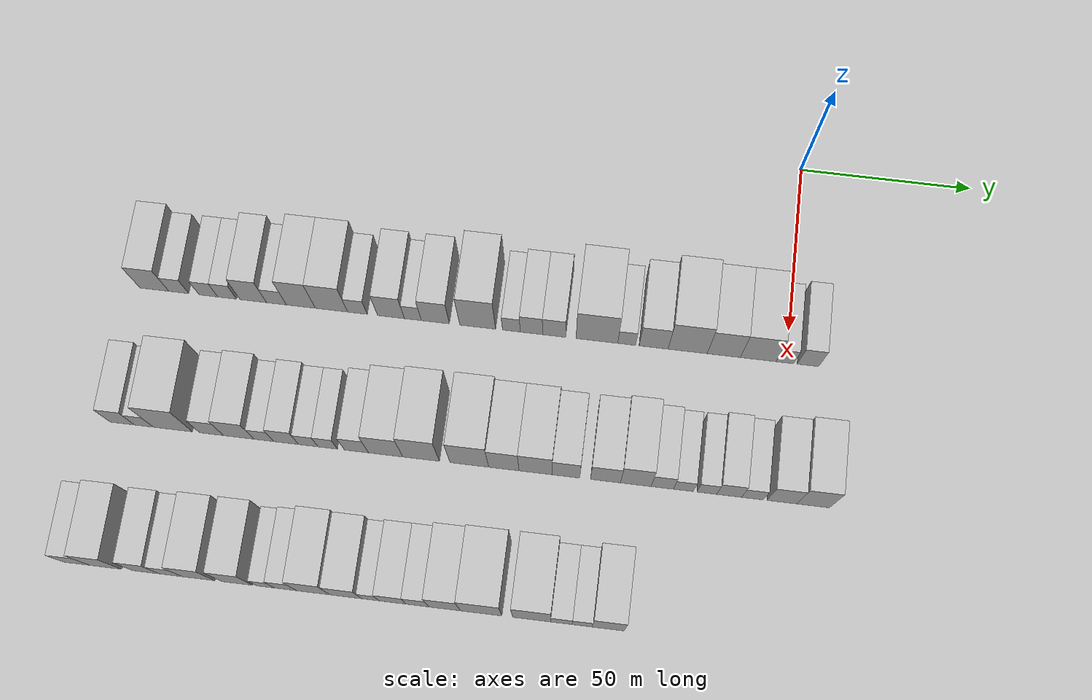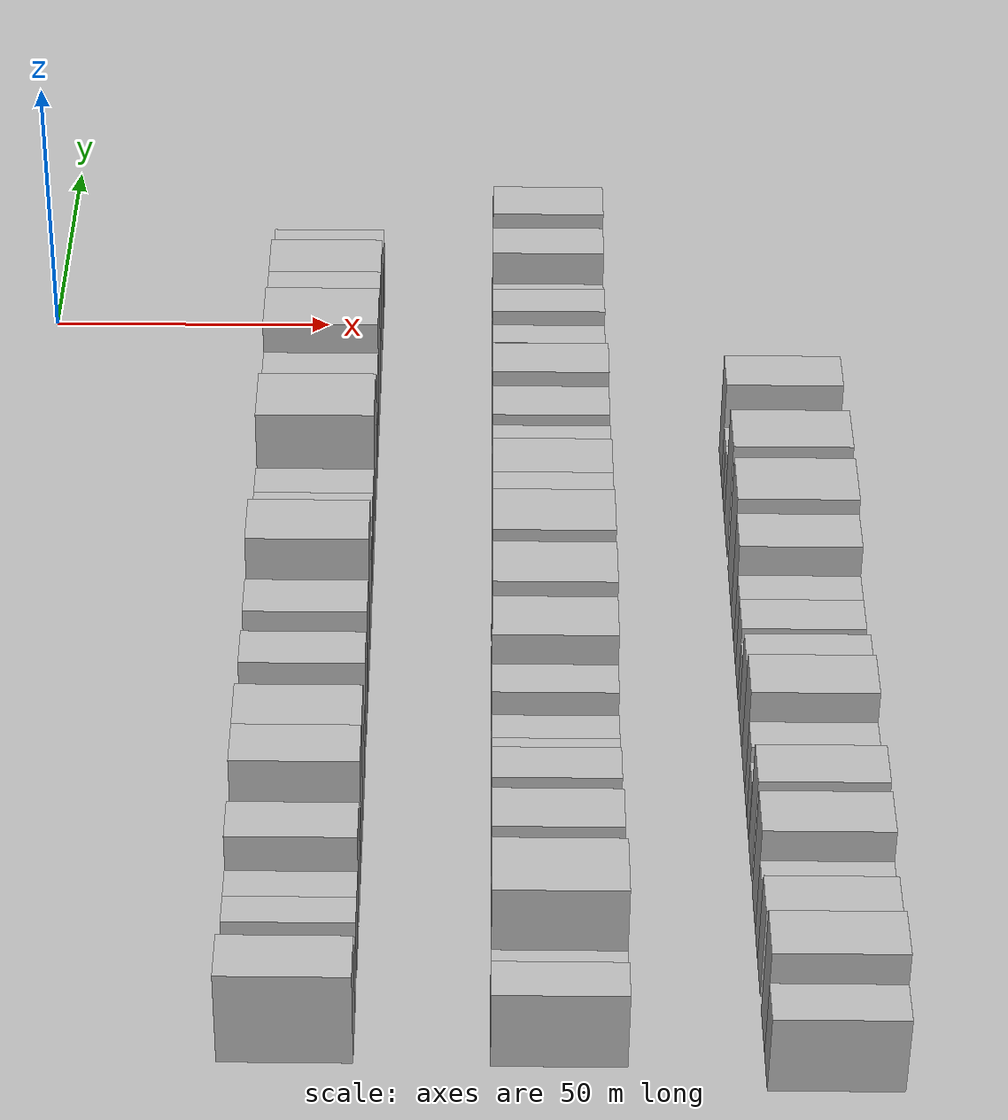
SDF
<sdf version="1.6">
 <world name="default">
  <include><name>ground_plane_1</name><uri>model://HANNAS_ground_plane</uri></include>
  <include>
   <name>ground_plane_2</name>
   <uri>model://HANNAS_ground_plane</uri>
   <pose>100 0 0  0 0 0</pose>
  </include>
  <model name="building_48">
   <static>1</static>
   <pose>50.0000 -182.7068 0 0.000000 0.000000 0.000000</pose>
   <link name="link">
    <pose>0 0 9.00 0 0 0</pose>
    <collision name="collision"><geometry><box><size>20.0000 8.4952 18.0000</size></box></geometry></collision>
    <visual name="visual">
     <cast_shadows>0</cast_shadows>
     <geometry><box><size>20.0000 8.4952 18.0000</size></box></geometry>
     <material>
      <script>
       <uri>model://HANNAS_wall/materials/scripts</uri>
       <uri>model://HANNAS_wall/materials/textures</uri>
       <name>vrc/HANNAS_wall</name>
      </script>
     </material>
    </visual>
   </link>
  </model>
  <model name="building_49">
   <static>1</static>
   <pose>50.0000 -175.5505 0 0.000000 0.000000 0.000000</pose>
   <link name="link">
    <pose>0 0 6.00 0 0 0</pose>
    <collision name="collision"><geometry><box><size>20.0000 5.8174 12.0000</size></box></geometry></collision>
    <visual name="visual">
     <cast_shadows>0</cast_shadows>
     <geometry><box><size>20.0000 5.8174 12.0000</size></box></geometry>
     <material>
      <script>
       <uri>model://HANNAS_wall/materials/scripts</uri>
       <uri>model://HANNAS_wall/materials/textures</uri>
       <name>vrc/HANNAS_wall</name>
      </script>
     </material>
    </visual>
   </link>
  </model>
  <model name="building_50">
   <static>1</static>
   <pose>50.0000 -166.8964 0 0.000000 0.000000 0.000000</pose>
   <link name="link">
    <pose>0 0 6.00 0 0 0</pose>
    <collision name="collision"><geometry><box><size>20.0000 5.4906 12.0000</size></box></geometry></collision>
    <visual name="visual">
     <cast_shadows>0</cast_shadows>
     <geometry><box><size>20.0000 5.4906 12.0000</size></box></geometry>
     <material>
      <script>
       <uri>model://HANNAS_wall/materials/scripts</uri>
       <uri>model://HANNAS_wall/materials/textures</uri>
       <name>vrc/HANNAS_wall</name>
      </script>
     </material>
    </visual>
   </link>
  </model>
  <model name="building_51">
   <static>1</static>
   <pose>50.0000 -161.4066 0 0.000000 0.000000 0.000000</pose>
   <link name="link">
    <pose>0 0 6.00 0 0 0</pose>
    <collision name="collision"><geometry><box><size>20.0000 5.4890 12.0000</size></box></geometry></collision>
    <visual name="visual">
     <cast_shadows>0</cast_shadows>
     <geometry><box><size>20.0000 5.4890 12.0000</size></box></geometry>
     <material>
      <script>
       <uri>model://HANNAS_wall/materials/scripts</uri>
       <uri>model://HANNAS_wall/materials/textures</uri>
       <name>vrc/HANNAS_wall</name>
      </script>
     </material>
    </visual>
   </link>
  </model>
  <model name="building_52">
   <static>1</static>
   <pose>50.0000 -153.7941 0 0.000000 0.000000 0.000000</pose>
   <link name="link">
    <pose>0 0 9.00 0 0 0</pose>
    <collision name="collision"><geometry><box><size>20.0000 7.7361 18.0000</size></box></geometry></collision>
    <visual name="visual">
     <cast_shadows>0</cast_shadows>
     <geometry><box><size>20.0000 7.7361 18.0000</size></box></geometry>
     <material>
      <script>
       <uri>model://HANNAS_wall/materials/scripts</uri>
       <uri>model://HANNAS_wall/materials/textures</uri>
       <name>vrc/HANNAS_wall</name>
      </script>
     </material>
    </visual>
   </link>
  </model>
  <model name="building_53">
   <static>1</static>
   <pose>50.0000 -147.0172 0 0.000000 0.000000 0.000000</pose>
   <link name="link">
    <pose>0 0 6.00 0 0 0</pose>
    <collision name="collision"><geometry><box><size>20.0000 5.8177 12.0000</size></box></geometry></collision>
    <visual name="visual">
     <cast_shadows>0</cast_shadows>
     <geometry><box><size>20.0000 5.8177 12.0000</size></box></geometry>
     <material>
      <script>
       <uri>model://HANNAS_wall/materials/scripts</uri>
       <uri>model://HANNAS_wall/materials/textures</uri>
       <name>vrc/HANNAS_wall</name>
      </script>
     </material>
    </visual>
   </link>
  </model>
  <model name="building_54">
   <static>1</static>
   <pose>50.0000 -139.8735 0 0.000000 0.000000 0.000000</pose>
   <link name="link">
    <pose>0 0 10.50 0 0 0</pose>
    <collision name="collision"><geometry><box><size>20.0000 8.4696 21.0000</size></box></geometry></collision>
    <visual name="visual">
     <cast_shadows>0</cast_shadows>
     <geometry><box><size>20.0000 8.4696 21.0000</size></box></geometry>
     <material>
      <script>
       <uri>model://HANNAS_wall/materials/scripts</uri>
       <uri>model://HANNAS_wall/materials/textures</uri>
       <name>vrc/HANNAS_wall</name>
      </script>
     </material>
    </visual>
   </link>
  </model>
  <model name="building_55">
   <static>1</static>
   <pose>50.0000 -130.9446 0 0.000000 0.000000 0.000000</pose>
   <link name="link">
    <pose>0 0 10.50 0 0 0</pose>
    <collision name="collision"><geometry><box><size>20.0000 9.3882 21.0000</size></box></geometry></collision>
    <visual name="visual">
     <cast_shadows>0</cast_shadows>
     <geometry><box><size>20.0000 9.3882 21.0000</size></box></geometry>
     <material>
      <script>
       <uri>model://HANNAS_wall/materials/scripts</uri>
       <uri>model://HANNAS_wall/materials/textures</uri>
       <name>vrc/HANNAS_wall</name>
      </script>
     </material>
    </visual>
   </link>
  </model>
  <model name="building_56">
   <static>1</static>
   <pose>50.0000 -123.4166 0 0.000000 0.000000 0.000000</pose>
   <link name="link">
    <pose>0 0 6.00 0 0 0</pose>
    <collision name="collision"><geometry><box><size>20.0000 5.6678 12.0000</size></box></geometry></collision>
    <visual name="visual">
     <cast_shadows>0</cast_shadows>
     <geometry><box><size>20.0000 5.6678 12.0000</size></box></geometry>
     <material>
      <script>
       <uri>model://HANNAS_wall/materials/scripts</uri>
       <uri>model://HANNAS_wall/materials/textures</uri>
       <name>vrc/HANNAS_wall</name>
      </script>
     </material>
    </visual>
   </link>
  </model>
  <model name="building_57">
   <static>1</static>
   <pose>50.0000 -113.6862 0 0.000000 0.000000 0.000000</pose>
   <link name="link">
    <pose>0 0 9.00 0 0 0</pose>
    <collision name="collision"><geometry><box><size>20.0000 7.7929 18.0000</size></box></geometry></collision>
    <visual name="visual">
     <cast_shadows>0</cast_shadows>
     <geometry><box><size>20.0000 7.7929 18.0000</size></box></geometry>
     <material>
      <script>
       <uri>model://HANNAS_wall/materials/scripts</uri>
       <uri>model://HANNAS_wall/materials/textures</uri>
       <name>vrc/HANNAS_wall</name>
      </script>
     </material>
    </visual>
   </link>
  </model>
  <model name="building_58">
   <static>1</static>
   <pose>50.0000 -107.3409 0 0.000000 0.000000 0.000000</pose>
   <link name="link">
    <pose>0 0 6.00 0 0 0</pose>
    <collision name="collision"><geometry><box><size>20.0000 4.8977 12.0000</size></box></geometry></collision>
    <visual name="visual">
     <cast_shadows>0</cast_shadows>
     <geometry><box><size>20.0000 4.8977 12.0000</size></box></geometry>
     <material>
      <script>
       <uri>model://HANNAS_wall/materials/scripts</uri>
       <uri>model://HANNAS_wall/materials/textures</uri>
       <name>vrc/HANNAS_wall</name>
      </script>
     </material>
    </visual>
   </link>
  </model>
  <model name="building_59">
   <static>1</static>
   <pose>50.0000 -100.8337 0 0.000000 0.000000 0.000000</pose>
   <link name="link">
    <pose>0 0 9.00 0 0 0</pose>
    <collision name="collision"><geometry><box><size>20.0000 8.1168 18.0000</size></box></geometry></collision>
    <visual name="visual">
     <cast_shadows>0</cast_shadows>
     <geometry><box><size>20.0000 8.1168 18.0000</size></box></geometry>
     <material>
      <script>
       <uri>model://HANNAS_wall/materials/scripts</uri>
       <uri>model://HANNAS_wall/materials/textures</uri>
       <name>vrc/HANNAS_wall</name>
      </script>
     </material>
    </visual>
   </link>
  </model>
  <model name="building_60">
   <static>1</static>
   <pose>50.0000 -88.5986 0 0.000000 0.000000 0.000000</pose>
   <link name="link">
    <pose>0 0 12.00 0 0 0</pose>
    <collision name="collision"><geometry><box><size>20.0000 10.3534 24.0000</size></box></geometry></collision>
    <visual name="visual">
     <cast_shadows>0</cast_shadows>
     <geometry><box><size>20.0000 10.3534 24.0000</size></box></geometry>
     <material>
      <script>
       <uri>model://HANNAS_wall/materials/scripts</uri>
       <uri>model://HANNAS_wall/materials/textures</uri>
       <name>vrc/HANNAS_wall</name>
      </script>
     </material>
    </visual>
   </link>
  </model>
  <model name="building_61">
   <static>1</static>
   <pose>50.0000 -78.8616 0 0.000000 0.000000 0.000000</pose>
   <link name="link">
    <pose>0 0 6.00 0 0 0</pose>
    <collision name="collision"><geometry><box><size>20.0000 5.1204 12.0000</size></box></geometry></collision>
    <visual name="visual">
     <cast_shadows>0</cast_shadows>
     <geometry><box><size>20.0000 5.1204 12.0000</size></box></geometry>
     <material>
      <script>
       <uri>model://HANNAS_wall/materials/scripts</uri>
       <uri>model://HANNAS_wall/materials/textures</uri>
       <name>vrc/HANNAS_wall</name>
      </script>
     </material>
    </visual>
   </link>
  </model>
  <model name="building_62">
   <static>1</static>
   <pose>50.0000 -73.0884 0 0.000000 0.000000 0.000000</pose>
   <link name="link">
    <pose>0 0 7.50 0 0 0</pose>
    <collision name="collision"><geometry><box><size>20.0000 6.4260 15.0000</size></box></geometry></collision>
    <visual name="visual">
     <cast_shadows>0</cast_shadows>
     <geometry><box><size>20.0000 6.4260 15.0000</size></box></geometry>
     <material>
      <script>
       <uri>model://HANNAS_wall/materials/scripts</uri>
       <uri>model://HANNAS_wall/materials/textures</uri>
       <name>vrc/HANNAS_wall</name>
      </script>
     </material>
    </visual>
   </link>
  </model>
  <model name="building_63">
   <static>1</static>
   <pose>50.0000 -66.5584 0 0.000000 0.000000 0.000000</pose>
   <link name="link">
    <pose>0 0 7.50 0 0 0</pose>
    <collision name="collision"><geometry><box><size>20.0000 6.6340 15.0000</size></box></geometry></collision>
    <visual name="visual">
     <cast_shadows>0</cast_shadows>
     <geometry><box><size>20.0000 6.6340 15.0000</size></box></geometry>
     <material>
      <script>
       <uri>model://HANNAS_wall/materials/scripts</uri>
       <uri>model://HANNAS_wall/materials/textures</uri>
       <name>vrc/HANNAS_wall</name>
      </script>
     </material>
    </visual>
   </link>
  </model>
  <model name="building_64">
   <static>1</static>
   <pose>50.0000 -54.2658 0 0.000000 0.000000 0.000000</pose>
   <link name="link">
    <pose>0 0 12.00 0 0 0</pose>
    <collision name="collision"><geometry><box><size>20.0000 11.9513 24.0000</size></box></geometry></collision>
    <visual name="visual">
     <cast_shadows>0</cast_shadows>
     <geometry><box><size>20.0000 11.9513 24.0000</size></box></geometry>
     <material>
      <script>
       <uri>model://HANNAS_wall/materials/scripts</uri>
       <uri>model://HANNAS_wall/materials/textures</uri>
       <name>vrc/HANNAS_wall</name>
      </script>
     </material>
    </visual>
   </link>
  </model>
  <model name="building_65">
   <static>1</static>
   <pose>50.0000 -45.7185 0 0.000000 0.000000 0.000000</pose>
   <link name="link">
    <pose>0 0 6.00 0 0 0</pose>
    <collision name="collision"><geometry><box><size>20.0000 5.1433 12.0000</size></box></geometry></collision>
    <visual name="visual">
     <cast_shadows>0</cast_shadows>
     <geometry><box><size>20.0000 5.1433 12.0000</size></box></geometry>
     <material>
      <script>
       <uri>model://HANNAS_wall/materials/scripts</uri>
       <uri>model://HANNAS_wall/materials/textures</uri>
       <name>vrc/HANNAS_wall</name>
      </script>
     </material>
    </visual>
   </link>
  </model>
  <model name="building_66">
   <static>1</static>
   <pose>50.0000 -38.0058 0 0.000000 0.000000 0.000000</pose>
   <link name="link">
    <pose>0 0 9.00 0 0 0</pose>
    <collision name="collision"><geometry><box><size>20.0000 8.2821 18.0000</size></box></geometry></collision>
    <visual name="visual">
     <cast_shadows>0</cast_shadows>
     <geometry><box><size>20.0000 8.2821 18.0000</size></box></geometry>
     <material>
      <script>
       <uri>model://HANNAS_wall/materials/scripts</uri>
       <uri>model://HANNAS_wall/materials/textures</uri>
       <name>vrc/HANNAS_wall</name>
      </script>
     </material>
    </visual>
   </link>
  </model>
  <model name="building_67">
   <static>1</static>
   <pose>50.0000 -28.2612 0 0.000000 0.000000 0.000000</pose>
   <link name="link">
    <pose>0 0 12.00 0 0 0</pose>
    <collision name="collision"><geometry><box><size>20.0000 11.2072 24.0000</size></box></geometry></collision>
    <visual name="visual">
     <cast_shadows>0</cast_shadows>
     <geometry><box><size>20.0000 11.2072 24.0000</size></box></geometry>
     <material>
      <script>
       <uri>model://HANNAS_wall/materials/scripts</uri>
       <uri>model://HANNAS_wall/materials/textures</uri>
       <name>vrc/HANNAS_wall</name>
      </script>
     </material>
    </visual>
   </link>
  </model>
  <model name="building_68">
   <static>1</static>
   <pose>50.0000 -17.9198 0 0.000000 0.000000 0.000000</pose>
   <link name="link">
    <pose>0 0 10.50 0 0 0</pose>
    <collision name="collision"><geometry><box><size>20.0000 9.4755 21.0000</size></box></geometry></collision>
    <visual name="visual">
     <cast_shadows>0</cast_shadows>
     <geometry><box><size>20.0000 9.4755 21.0000</size></box></geometry>
     <material>
      <script>
       <uri>model://HANNAS_wall/materials/scripts</uri>
       <uri>model://HANNAS_wall/materials/textures</uri>
       <name>vrc/HANNAS_wall</name>
      </script>
     </material>
    </visual>
   </link>
  </model>
  <model name="building_69">
   <static>1</static>
   <pose>50.0000 -8.1011 0 0.000000 0.000000 0.000000</pose>
   <link name="link">
    <pose>0 0 10.50 0 0 0</pose>
    <collision name="collision"><geometry><box><size>20.0000 10.1619 21.0000</size></box></geometry></collision>
    <visual name="visual">
     <cast_shadows>0</cast_shadows>
     <geometry><box><size>20.0000 10.1619 21.0000</size></box></geometry>
     <material>
      <script>
       <uri>model://HANNAS_wall/materials/scripts</uri>
       <uri>model://HANNAS_wall/materials/textures</uri>
       <name>vrc/HANNAS_wall</name>
      </script>
     </material>
    </visual>
   </link>
  </model>
  <model name="building_70">
   <static>1</static>
   <pose>50.0000 -0.4950 0 0.000000 0.000000 0.000000</pose>
   <link name="link">
    <pose>0 0 6.00 0 0 0</pose>
    <collision name="collision"><geometry><box><size>20.0000 5.0504 12.0000</size></box></geometry></collision>
    <visual name="visual">
     <cast_shadows>0</cast_shadows>
     <geometry><box><size>20.0000 5.0504 12.0000</size></box></geometry>
     <material>
      <script>
       <uri>model://HANNAS_wall/materials/scripts</uri>
       <uri>model://HANNAS_wall/materials/textures</uri>
       <name>vrc/HANNAS_wall</name>
      </script>
     </material>
    </visual>
   </link>
  </model>
  <model name="building_71">
   <static>1</static>
   <pose>50.0000 6.1063 0 0.000000 0.000000 0.000000</pose>
   <link name="link">
    <pose>0 0 7.50 0 0 0</pose>
    <collision name="collision"><geometry><box><size>20.0000 6.1522 15.0000</size></box></geometry></collision>
    <visual name="visual">
     <cast_shadows>0</cast_shadows>
     <geometry><box><size>20.0000 6.1522 15.0000</size></box></geometry>
     <material>
      <script>
       <uri>model://HANNAS_wall/materials/scripts</uri>
       <uri>model://HANNAS_wall/materials/textures</uri>
       <name>vrc/HANNAS_wall</name>
      </script>
     </material>
    </visual>
   </link>
  </model>
  <model name="building_190">
   <static>1</static>
   <pose>90.0000 -183.8102 0 0.000000 0.000000 0.000000</pose>
   <link name="link">
    <pose>0 0 7.50 0 0 0</pose>
    <collision name="collision"><geometry><box><size>20.0000 6.9402 15.0000</size></box></geometry></collision>
    <visual name="visual">
     <cast_shadows>0</cast_shadows>
     <geometry><box><size>20.0000 6.9402 15.0000</size></box></geometry>
     <material>
      <script>
       <uri>model://HANNAS_wall/materials/scripts</uri>
       <uri>model://HANNAS_wall/materials/textures</uri>
       <name>vrc/HANNAS_wall</name>
      </script>
     </material>
    </visual>
   </link>
  </model>
  <model name="building_191">
   <static>1</static>
   <pose>90.0000 -177.6472 0 0.000000 0.000000 0.000000</pose>
   <link name="link">
    <pose>0 0 6.00 0 0 0</pose>
    <collision name="collision"><geometry><box><size>20.0000 5.3858 12.0000</size></box></geometry></collision>
    <visual name="visual">
     <cast_shadows>0</cast_shadows>
     <geometry><box><size>20.0000 5.3858 12.0000</size></box></geometry>
     <material>
      <script>
       <uri>model://HANNAS_wall/materials/scripts</uri>
       <uri>model://HANNAS_wall/materials/textures</uri>
       <name>vrc/HANNAS_wall</name>
      </script>
     </material>
    </visual>
   </link>
  </model>
  <model name="building_192">
   <static>1</static>
   <pose>90.0000 -169.3589 0 0.000000 0.000000 0.000000</pose>
   <link name="link">
    <pose>0 0 12.00 0 0 0</pose>
    <collision name="collision"><geometry><box><size>20.0000 11.1908 24.0000</size></box></geometry></collision>
    <visual name="visual">
     <cast_shadows>0</cast_shadows>
     <geometry><box><size>20.0000 11.1908 24.0000</size></box></geometry>
     <material>
      <script>
       <uri>model://HANNAS_wall/materials/scripts</uri>
       <uri>model://HANNAS_wall/materials/textures</uri>
       <name>vrc/HANNAS_wall</name>
      </script>
     </material>
    </visual>
   </link>
  </model>
  <model name="building_193">
   <static>1</static>
   <pose>90.0000 -158.3385 0 0.000000 0.000000 0.000000</pose>
   <link name="link">
    <pose>0 0 7.50 0 0 0</pose>
    <collision name="collision"><geometry><box><size>20.0000 6.8500 15.0000</size></box></geometry></collision>
    <visual name="visual">
     <cast_shadows>0</cast_shadows>
     <geometry><box><size>20.0000 6.8500 15.0000</size></box></geometry>
     <material>
      <script>
       <uri>model://HANNAS_wall/materials/scripts</uri>
       <uri>model://HANNAS_wall/materials/textures</uri>
       <name>vrc/HANNAS_wall</name>
      </script>
     </material>
    </visual>
   </link>
  </model>
  <model name="building_194">
   <static>1</static>
   <pose>90.0000 -150.6109 0 0.000000 0.000000 0.000000</pose>
   <link name="link">
    <pose>0 0 9.00 0 0 0</pose>
    <collision name="collision"><geometry><box><size>20.0000 8.6053 18.0000</size></box></geometry></collision>
    <visual name="visual">
     <cast_shadows>0</cast_shadows>
     <geometry><box><size>20.0000 8.6053 18.0000</size></box></geometry>
     <material>
      <script>
       <uri>model://HANNAS_wall/materials/scripts</uri>
       <uri>model://HANNAS_wall/materials/textures</uri>
       <name>vrc/HANNAS_wall</name>
      </script>
     </material>
    </visual>
   </link>
  </model>
  <model name="building_195">
   <static>1</static>
   <pose>90.0000 -143.4788 0 0.000000 0.000000 0.000000</pose>
   <link name="link">
    <pose>0 0 6.00 0 0 0</pose>
    <collision name="collision"><geometry><box><size>20.0000 5.6589 12.0000</size></box></geometry></collision>
    <visual name="visual">
     <cast_shadows>0</cast_shadows>
     <geometry><box><size>20.0000 5.6589 12.0000</size></box></geometry>
     <material>
      <script>
       <uri>model://HANNAS_wall/materials/scripts</uri>
       <uri>model://HANNAS_wall/materials/textures</uri>
       <name>vrc/HANNAS_wall</name>
      </script>
     </material>
    </visual>
   </link>
  </model>
  <model name="building_196">
   <static>1</static>
   <pose>90.0000 -137.1305 0 0.000000 0.000000 0.000000</pose>
   <link name="link">
    <pose>0 0 7.50 0 0 0</pose>
    <collision name="collision"><geometry><box><size>20.0000 7.0379 15.0000</size></box></geometry></collision>
    <visual name="visual">
     <cast_shadows>0</cast_shadows>
     <geometry><box><size>20.0000 7.0379 15.0000</size></box></geometry>
     <material>
      <script>
       <uri>model://HANNAS_wall/materials/scripts</uri>
       <uri>model://HANNAS_wall/materials/textures</uri>
       <name>vrc/HANNAS_wall</name>
      </script>
     </material>
    </visual>
   </link>
  </model>
  <model name="building_197">
   <static>1</static>
   <pose>90.0000 -130.8637 0 0.000000 0.000000 0.000000</pose>
   <link name="link">
    <pose>0 0 6.00 0 0 0</pose>
    <collision name="collision"><geometry><box><size>20.0000 5.4956 12.0000</size></box></geometry></collision>
    <visual name="visual">
     <cast_shadows>0</cast_shadows>
     <geometry><box><size>20.0000 5.4956 12.0000</size></box></geometry>
     <material>
      <script>
       <uri>model://HANNAS_wall/materials/scripts</uri>
       <uri>model://HANNAS_wall/materials/textures</uri>
       <name>vrc/HANNAS_wall</name>
      </script>
     </material>
    </visual>
   </link>
  </model>
  <model name="building_198">
   <static>1</static>
   <pose>90.0000 -125.3883 0 0.000000 0.000000 0.000000</pose>
   <link name="link">
    <pose>0 0 6.00 0 0 0</pose>
    <collision name="collision"><geometry><box><size>20.0000 5.4553 12.0000</size></box></geometry></collision>
    <visual name="visual">
     <cast_shadows>0</cast_shadows>
     <geometry><box><size>20.0000 5.4553 12.0000</size></box></geometry>
     <material>
      <script>
       <uri>model://HANNAS_wall/materials/scripts</uri>
       <uri>model://HANNAS_wall/materials/textures</uri>
       <name>vrc/HANNAS_wall</name>
      </script>
     </material>
    </visual>
   </link>
  </model>
  <model name="building_199">
   <static>1</static>
   <pose>90.0000 -117.2525 0 0.000000 0.000000 0.000000</pose>
   <link name="link">
    <pose>0 0 7.50 0 0 0</pose>
    <collision name="collision"><geometry><box><size>20.0000 6.8163 15.0000</size></box></geometry></collision>
    <visual name="visual">
     <cast_shadows>0</cast_shadows>
     <geometry><box><size>20.0000 6.8163 15.0000</size></box></geometry>
     <material>
      <script>
       <uri>model://HANNAS_wall/materials/scripts</uri>
       <uri>model://HANNAS_wall/materials/textures</uri>
       <name>vrc/HANNAS_wall</name>
      </script>
     </material>
    </visual>
   </link>
  </model>
  <model name="building_200">
   <static>1</static>
   <pose>90.0000 -109.0110 0 0.000000 0.000000 0.000000</pose>
   <link name="link">
    <pose>0 0 10.50 0 0 0</pose>
    <collision name="collision"><geometry><box><size>20.0000 9.6666 21.0000</size></box></geometry></collision>
    <visual name="visual">
     <cast_shadows>0</cast_shadows>
     <geometry><box><size>20.0000 9.6666 21.0000</size></box></geometry>
     <material>
      <script>
       <uri>model://HANNAS_wall/materials/scripts</uri>
       <uri>model://HANNAS_wall/materials/textures</uri>
       <name>vrc/HANNAS_wall</name>
      </script>
     </material>
    </visual>
   </link>
  </model>
  <model name="building_201">
   <static>1</static>
   <pose>90.0000 -99.0348 0 0.000000 0.000000 0.000000</pose>
   <link name="link">
    <pose>0 0 12.00 0 0 0</pose>
    <collision name="collision"><geometry><box><size>20.0000 10.2858 24.0000</size></box></geometry></collision>
    <visual name="visual">
     <cast_shadows>0</cast_shadows>
     <geometry><box><size>20.0000 10.2858 24.0000</size></box></geometry>
     <material>
      <script>
       <uri>model://HANNAS_wall/materials/scripts</uri>
       <uri>model://HANNAS_wall/materials/textures</uri>
       <name>vrc/HANNAS_wall</name>
      </script>
     </material>
    </visual>
   </link>
  </model>
  <model name="building_202">
   <static>1</static>
   <pose>90.0000 -85.4838 0 0.000000 0.000000 0.000000</pose>
   <link name="link">
    <pose>0 0 12.00 0 0 0</pose>
    <collision name="collision"><geometry><box><size>20.0000 10.8162 24.0000</size></box></geometry></collision>
    <visual name="visual">
     <cast_shadows>0</cast_shadows>
     <geometry><box><size>20.0000 10.8162 24.0000</size></box></geometry>
     <material>
      <script>
       <uri>model://HANNAS_wall/materials/scripts</uri>
       <uri>model://HANNAS_wall/materials/textures</uri>
       <name>vrc/HANNAS_wall</name>
      </script>
     </material>
    </visual>
   </link>
  </model>
  <model name="building_203">
   <static>1</static>
   <pose>90.0000 -75.8133 0 0.000000 0.000000 0.000000</pose>
   <link name="link">
    <pose>0 0 10.50 0 0 0</pose>
    <collision name="collision"><geometry><box><size>20.0000 8.5249 21.0000</size></box></geometry></collision>
    <visual name="visual">
     <cast_shadows>0</cast_shadows>
     <geometry><box><size>20.0000 8.5249 21.0000</size></box></geometry>
     <material>
      <script>
       <uri>model://HANNAS_wall/materials/scripts</uri>
       <uri>model://HANNAS_wall/materials/textures</uri>
       <name>vrc/HANNAS_wall</name>
      </script>
     </material>
    </visual>
   </link>
  </model>
  <model name="building_204">
   <static>1</static>
   <pose>90.0000 -66.8872 0 0.000000 0.000000 0.000000</pose>
   <link name="link">
    <pose>0 0 10.50 0 0 0</pose>
    <collision name="collision"><geometry><box><size>20.0000 9.3274 21.0000</size></box></geometry></collision>
    <visual name="visual">
     <cast_shadows>0</cast_shadows>
     <geometry><box><size>20.0000 9.3274 21.0000</size></box></geometry>
     <material>
      <script>
       <uri>model://HANNAS_wall/materials/scripts</uri>
       <uri>model://HANNAS_wall/materials/textures</uri>
       <name>vrc/HANNAS_wall</name>
      </script>
     </material>
    </visual>
   </link>
  </model>
  <model name="building_205">
   <static>1</static>
   <pose>90.0000 -58.3926 0 0.000000 0.000000 0.000000</pose>
   <link name="link">
    <pose>0 0 9.00 0 0 0</pose>
    <collision name="collision"><geometry><box><size>20.0000 7.6618 18.0000</size></box></geometry></collision>
    <visual name="visual">
     <cast_shadows>0</cast_shadows>
     <geometry><box><size>20.0000 7.6618 18.0000</size></box></geometry>
     <material>
      <script>
       <uri>model://HANNAS_wall/materials/scripts</uri>
       <uri>model://HANNAS_wall/materials/textures</uri>
       <name>vrc/HANNAS_wall</name>
      </script>
     </material>
    </visual>
   </link>
  </model>
  <model name="building_206">
   <static>1</static>
   <pose>90.0000 -47.3894 0 0.000000 0.000000 0.000000</pose>
   <link name="link">
    <pose>0 0 9.00 0 0 0</pose>
    <collision name="collision"><geometry><box><size>20.0000 8.3446 18.0000</size></box></geometry></collision>
    <visual name="visual">
     <cast_shadows>0</cast_shadows>
     <geometry><box><size>20.0000 8.3446 18.0000</size></box></geometry>
     <material>
      <script>
       <uri>model://HANNAS_wall/materials/scripts</uri>
       <uri>model://HANNAS_wall/materials/textures</uri>
       <name>vrc/HANNAS_wall</name>
      </script>
     </material>
    </visual>
   </link>
  </model>
  <model name="building_207">
   <static>1</static>
   <pose>90.0000 -38.9517 0 0.000000 0.000000 0.000000</pose>
   <link name="link">
    <pose>0 0 10.50 0 0 0</pose>
    <collision name="collision"><geometry><box><size>20.0000 8.5309 21.0000</size></box></geometry></collision>
    <visual name="visual">
     <cast_shadows>0</cast_shadows>
     <geometry><box><size>20.0000 8.5309 21.0000</size></box></geometry>
     <material>
      <script>
       <uri>model://HANNAS_wall/materials/scripts</uri>
       <uri>model://HANNAS_wall/materials/textures</uri>
       <name>vrc/HANNAS_wall</name>
      </script>
     </material>
    </visual>
   </link>
  </model>
  <model name="building_208">
   <static>1</static>
   <pose>90.0000 -31.5773 0 0.000000 0.000000 0.000000</pose>
   <link name="link">
    <pose>0 0 7.50 0 0 0</pose>
    <collision name="collision"><geometry><box><size>20.0000 6.2178 15.0000</size></box></geometry></collision>
    <visual name="visual">
     <cast_shadows>0</cast_shadows>
     <geometry><box><size>20.0000 6.2178 15.0000</size></box></geometry>
     <material>
      <script>
       <uri>model://HANNAS_wall/materials/scripts</uri>
       <uri>model://HANNAS_wall/materials/textures</uri>
       <name>vrc/HANNAS_wall</name>
      </script>
     </material>
    </visual>
   </link>
  </model>
  <model name="building_209">
   <static>1</static>
   <pose>90.0000 -25.7071 0 0.000000 0.000000 0.000000</pose>
   <link name="link">
    <pose>0 0 6.00 0 0 0</pose>
    <collision name="collision"><geometry><box><size>20.0000 5.5227 12.0000</size></box></geometry></collision>
    <visual name="visual">
     <cast_shadows>0</cast_shadows>
     <geometry><box><size>20.0000 5.5227 12.0000</size></box></geometry>
     <material>
      <script>
       <uri>model://HANNAS_wall/materials/scripts</uri>
       <uri>model://HANNAS_wall/materials/textures</uri>
       <name>vrc/HANNAS_wall</name>
      </script>
     </material>
    </visual>
   </link>
  </model>
  <model name="building_210">
   <static>1</static>
   <pose>90.0000 -19.2058 0 0.000000 0.000000 0.000000</pose>
   <link name="link">
    <pose>0 0 6.00 0 0 0</pose>
    <collision name="collision"><geometry><box><size>20.0000 5.4799 12.0000</size></box></geometry></collision>
    <visual name="visual">
     <cast_shadows>0</cast_shadows>
     <geometry><box><size>20.0000 5.4799 12.0000</size></box></geometry>
     <material>
      <script>
       <uri>model://HANNAS_wall/materials/scripts</uri>
       <uri>model://HANNAS_wall/materials/textures</uri>
       <name>vrc/HANNAS_wall</name>
      </script>
     </material>
    </visual>
   </link>
  </model>
  <model name="building_211">
   <static>1</static>
   <pose>90.0000 -12.9869 0 0.000000 0.000000 0.000000</pose>
   <link name="link">
    <pose>0 0 7.50 0 0 0</pose>
    <collision name="collision"><geometry><box><size>20.0000 6.9579 15.0000</size></box></geometry></collision>
    <visual name="visual">
     <cast_shadows>0</cast_shadows>
     <geometry><box><size>20.0000 6.9579 15.0000</size></box></geometry>
     <material>
      <script>
       <uri>model://HANNAS_wall/materials/scripts</uri>
       <uri>model://HANNAS_wall/materials/textures</uri>
       <name>vrc/HANNAS_wall</name>
      </script>
     </material>
    </visual>
   </link>
  </model>
  <model name="building_212">
   <static>1</static>
   <pose>90.0000 -6.5083 0 0.000000 0.000000 0.000000</pose>
   <link name="link">
    <pose>0 0 6.00 0 0 0</pose>
    <collision name="collision"><geometry><box><size>20.0000 5.9993 12.0000</size></box></geometry></collision>
    <visual name="visual">
     <cast_shadows>0</cast_shadows>
     <geometry><box><size>20.0000 5.9993 12.0000</size></box></geometry>
     <material>
      <script>
       <uri>model://HANNAS_wall/materials/scripts</uri>
       <uri>model://HANNAS_wall/materials/textures</uri>
       <name>vrc/HANNAS_wall</name>
      </script>
     </material>
    </visual>
   </link>
  </model>
  <model name="building_213">
   <static>1</static>
   <pose>90.0000 1.6147 0 0.000000 0.000000 0.000000</pose>
   <link name="link">
    <pose>0 0 9.00 0 0 0</pose>
    <collision name="collision"><geometry><box><size>20.0000 8.2468 18.0000</size></box></geometry></collision>
    <visual name="visual">
     <cast_shadows>0</cast_shadows>
     <geometry><box><size>20.0000 8.2468 18.0000</size></box></geometry>
     <material>
      <script>
       <uri>model://HANNAS_wall/materials/scripts</uri>
       <uri>model://HANNAS_wall/materials/textures</uri>
       <name>vrc/HANNAS_wall</name>
      </script>
     </material>
    </visual>
   </link>
  </model>
  <model name="building_214">
   <static>1</static>
   <pose>90.0000 10.2781 0 0.000000 0.000000 0.000000</pose>
   <link name="link">
    <pose>0 0 10.50 0 0 0</pose>
    <collision name="collision"><geometry><box><size>20.0000 9.0800 21.0000</size></box></geometry></collision>
    <visual name="visual">
     <cast_shadows>0</cast_shadows>
     <geometry><box><size>20.0000 9.0800 21.0000</size></box></geometry>
     <material>
      <script>
       <uri>model://HANNAS_wall/materials/scripts</uri>
       <uri>model://HANNAS_wall/materials/textures</uri>
       <name>vrc/HANNAS_wall</name>
      </script>
     </material>
    </visual>
   </link>
  </model>
  <model name="building_330">
   <static>1</static>
   <pose>130.0000 -187.9831 0 0.000000 0.000000 0.000000</pose>
   <link name="link">
    <pose>0 0 7.50 0 0 0</pose>
    <collision name="collision"><geometry><box><size>20.0000 7.2736 15.0000</size></box></geometry></collision>
    <visual name="visual">
     <cast_shadows>0</cast_shadows>
     <geometry><box><size>20.0000 7.2736 15.0000</size></box></geometry>
     <material>
      <script>
       <uri>model://HANNAS_wall/materials/scripts</uri>
       <uri>model://HANNAS_wall/materials/textures</uri>
       <name>vrc/HANNAS_wall</name>
      </script>
     </material>
    </visual>
   </link>
  </model>
  <model name="building_331">
   <static>1</static>
   <pose>130.0000 -179.9331 0 0.000000 0.000000 0.000000</pose>
   <link name="link">
    <pose>0 0 10.50 0 0 0</pose>
    <collision name="collision"><geometry><box><size>20.0000 8.8264 21.0000</size></box></geometry></collision>
    <visual name="visual">
     <cast_shadows>0</cast_shadows>
     <geometry><box><size>20.0000 8.8264 21.0000</size></box></geometry>
     <material>
      <script>
       <uri>model://HANNAS_wall/materials/scripts</uri>
       <uri>model://HANNAS_wall/materials/textures</uri>
       <name>vrc/HANNAS_wall</name>
      </script>
     </material>
    </visual>
   </link>
  </model>
  <model name="building_332">
   <static>1</static>
   <pose>130.0000 -168.7784 0 0.000000 0.000000 0.000000</pose>
   <link name="link">
    <pose>0 0 9.00 0 0 0</pose>
    <collision name="collision"><geometry><box><size>20.0000 7.4831 18.0000</size></box></geometry></collision>
    <visual name="visual">
     <cast_shadows>0</cast_shadows>
     <geometry><box><size>20.0000 7.4831 18.0000</size></box></geometry>
     <material>
      <script>
       <uri>model://HANNAS_wall/materials/scripts</uri>
       <uri>model://HANNAS_wall/materials/textures</uri>
       <name>vrc/HANNAS_wall</name>
      </script>
     </material>
    </visual>
   </link>
  </model>
  <model name="building_333">
   <static>1</static>
   <pose>130.0000 -161.8646 0 0.000000 0.000000 0.000000</pose>
   <link name="link">
    <pose>0 0 7.50 0 0 0</pose>
    <collision name="collision"><geometry><box><size>20.0000 6.3444 15.0000</size></box></geometry></collision>
    <visual name="visual">
     <cast_shadows>0</cast_shadows>
     <geometry><box><size>20.0000 6.3444 15.0000</size></box></geometry>
     <material>
      <script>
       <uri>model://HANNAS_wall/materials/scripts</uri>
       <uri>model://HANNAS_wall/materials/textures</uri>
       <name>vrc/HANNAS_wall</name>
      </script>
     </material>
    </visual>
   </link>
  </model>
  <model name="building_334">
   <static>1</static>
   <pose>130.0000 -154.2457 0 0.000000 0.000000 0.000000</pose>
   <link name="link">
    <pose>0 0 10.50 0 0 0</pose>
    <collision name="collision"><geometry><box><size>20.0000 8.8935 21.0000</size></box></geometry></collision>
    <visual name="visual">
     <cast_shadows>0</cast_shadows>
     <geometry><box><size>20.0000 8.8935 21.0000</size></box></geometry>
     <material>
      <script>
       <uri>model://HANNAS_wall/materials/scripts</uri>
       <uri>model://HANNAS_wall/materials/textures</uri>
       <name>vrc/HANNAS_wall</name>
      </script>
     </material>
    </visual>
   </link>
  </model>
  <model name="building_335">
   <static>1</static>
   <pose>130.0000 -143.5703 0 0.000000 0.000000 0.000000</pose>
   <link name="link">
    <pose>0 0 10.50 0 0 0</pose>
    <collision name="collision"><geometry><box><size>20.0000 8.4573 21.0000</size></box></geometry></collision>
    <visual name="visual">
     <cast_shadows>0</cast_shadows>
     <geometry><box><size>20.0000 8.4573 21.0000</size></box></geometry>
     <material>
      <script>
       <uri>model://HANNAS_wall/materials/scripts</uri>
       <uri>model://HANNAS_wall/materials/textures</uri>
       <name>vrc/HANNAS_wall</name>
      </script>
     </material>
    </visual>
   </link>
  </model>
  <model name="building_336">
   <static>1</static>
   <pose>130.0000 -135.8262 0 0.000000 0.000000 0.000000</pose>
   <link name="link">
    <pose>0 0 6.00 0 0 0</pose>
    <collision name="collision"><geometry><box><size>20.0000 5.0308 12.0000</size></box></geometry></collision>
    <visual name="visual">
     <cast_shadows>0</cast_shadows>
     <geometry><box><size>20.0000 5.0308 12.0000</size></box></geometry>
     <material>
      <script>
       <uri>model://HANNAS_wall/materials/scripts</uri>
       <uri>model://HANNAS_wall/materials/textures</uri>
       <name>vrc/HANNAS_wall</name>
      </script>
     </material>
    </visual>
   </link>
  </model>
  <model name="building_337">
   <static>1</static>
   <pose>130.0000 -130.2888 0 0.000000 0.000000 0.000000</pose>
   <link name="link">
    <pose>0 0 7.50 0 0 0</pose>
    <collision name="collision"><geometry><box><size>20.0000 6.0440 15.0000</size></box></geometry></collision>
    <visual name="visual">
     <cast_shadows>0</cast_shadows>
     <geometry><box><size>20.0000 6.0440 15.0000</size></box></geometry>
     <material>
      <script>
       <uri>model://HANNAS_wall/materials/scripts</uri>
       <uri>model://HANNAS_wall/materials/textures</uri>
       <name>vrc/HANNAS_wall</name>
      </script>
     </material>
    </visual>
   </link>
  </model>
  <model name="building_338">
   <static>1</static>
   <pose>130.0000 -122.6808 0 0.000000 0.000000 0.000000</pose>
   <link name="link">
    <pose>0 0 10.50 0 0 0</pose>
    <collision name="collision"><geometry><box><size>20.0000 9.1720 21.0000</size></box></geometry></collision>
    <visual name="visual">
     <cast_shadows>0</cast_shadows>
     <geometry><box><size>20.0000 9.1720 21.0000</size></box></geometry>
     <material>
      <script>
       <uri>model://HANNAS_wall/materials/scripts</uri>
       <uri>model://HANNAS_wall/materials/textures</uri>
       <name>vrc/HANNAS_wall</name>
      </script>
     </material>
    </visual>
   </link>
  </model>
  <model name="building_339">
   <static>1</static>
   <pose>130.0000 -113.7663 0 0.000000 0.000000 0.000000</pose>
   <link name="link">
    <pose>0 0 9.00 0 0 0</pose>
    <collision name="collision"><geometry><box><size>20.0000 8.6570 18.0000</size></box></geometry></collision>
    <visual name="visual">
     <cast_shadows>0</cast_shadows>
     <geometry><box><size>20.0000 8.6570 18.0000</size></box></geometry>
     <material>
      <script>
       <uri>model://HANNAS_wall/materials/scripts</uri>
       <uri>model://HANNAS_wall/materials/textures</uri>
       <name>vrc/HANNAS_wall</name>
      </script>
     </material>
    </visual>
   </link>
  </model>
  <model name="building_340">
   <static>1</static>
   <pose>130.0000 -107.0268 0 0.000000 0.000000 0.000000</pose>
   <link name="link">
    <pose>0 0 6.00 0 0 0</pose>
    <collision name="collision"><geometry><box><size>20.0000 4.8220 12.0000</size></box></geometry></collision>
    <visual name="visual">
     <cast_shadows>0</cast_shadows>
     <geometry><box><size>20.0000 4.8220 12.0000</size></box></geometry>
     <material>
      <script>
       <uri>model://HANNAS_wall/materials/scripts</uri>
       <uri>model://HANNAS_wall/materials/textures</uri>
       <name>vrc/HANNAS_wall</name>
      </script>
     </material>
    </visual>
   </link>
  </model>
  <model name="building_341">
   <static>1</static>
   <pose>130.0000 -100.8973 0 0.000000 0.000000 0.000000</pose>
   <link name="link">
    <pose>0 0 7.50 0 0 0</pose>
    <collision name="collision"><geometry><box><size>20.0000 7.4370 15.0000</size></box></geometry></collision>
    <visual name="visual">
     <cast_shadows>0</cast_shadows>
     <geometry><box><size>20.0000 7.4370 15.0000</size></box></geometry>
     <material>
      <script>
       <uri>model://HANNAS_wall/materials/scripts</uri>
       <uri>model://HANNAS_wall/materials/textures</uri>
       <name>vrc/HANNAS_wall</name>
      </script>
     </material>
    </visual>
   </link>
  </model>
  <model name="building_342">
   <static>1</static>
   <pose>130.0000 -94.0949 0 0.000000 0.000000 0.000000</pose>
   <link name="link">
    <pose>0 0 7.50 0 0 0</pose>
    <collision name="collision"><geometry><box><size>20.0000 6.1679 15.0000</size></box></geometry></collision>
    <visual name="visual">
     <cast_shadows>0</cast_shadows>
     <geometry><box><size>20.0000 6.1679 15.0000</size></box></geometry>
     <material>
      <script>
       <uri>model://HANNAS_wall/materials/scripts</uri>
       <uri>model://HANNAS_wall/materials/textures</uri>
       <name>vrc/HANNAS_wall</name>
      </script>
     </material>
    </visual>
   </link>
  </model>
  <model name="building_343">
   <static>1</static>
   <pose>130.0000 -86.6816 0 0.000000 0.000000 0.000000</pose>
   <link name="link">
    <pose>0 0 10.50 0 0 0</pose>
    <collision name="collision"><geometry><box><size>20.0000 8.6586 21.0000</size></box></geometry></collision>
    <visual name="visual">
     <cast_shadows>0</cast_shadows>
     <geometry><box><size>20.0000 8.6586 21.0000</size></box></geometry>
     <material>
      <script>
       <uri>model://HANNAS_wall/materials/scripts</uri>
       <uri>model://HANNAS_wall/materials/textures</uri>
       <name>vrc/HANNAS_wall</name>
      </script>
     </material>
    </visual>
   </link>
  </model>
  <model name="building_344">
   <static>1</static>
   <pose>130.0000 -76.7237 0 0.000000 0.000000 0.000000</pose>
   <link name="link">
    <pose>0 0 12.00 0 0 0</pose>
    <collision name="collision"><geometry><box><size>20.0000 11.2573 24.0000</size></box></geometry></collision>
    <visual name="visual">
     <cast_shadows>0</cast_shadows>
     <geometry><box><size>20.0000 11.2573 24.0000</size></box></geometry>
     <material>
      <script>
       <uri>model://HANNAS_wall/materials/scripts</uri>
       <uri>model://HANNAS_wall/materials/textures</uri>
       <name>vrc/HANNAS_wall</name>
      </script>
     </material>
    </visual>
   </link>
  </model>
  <model name="building_345">
   <static>1</static>
   <pose>130.0000 -62.9332 0 0.000000 0.000000 0.000000</pose>
   <link name="link">
    <pose>0 0 12.00 0 0 0</pose>
    <collision name="collision"><geometry><box><size>20.0000 10.3238 24.0000</size></box></geometry></collision>
    <visual name="visual">
     <cast_shadows>0</cast_shadows>
     <geometry><box><size>20.0000 10.3238 24.0000</size></box></geometry>
     <material>
      <script>
       <uri>model://HANNAS_wall/materials/scripts</uri>
       <uri>model://HANNAS_wall/materials/textures</uri>
       <name>vrc/HANNAS_wall</name>
      </script>
     </material>
    </visual>
   </link>
  </model>
  <model name="building_346">
   <static>1</static>
   <pose>130.0000 -54.9087 0 0.000000 0.000000 0.000000</pose>
   <link name="link">
    <pose>0 0 6.00 0 0 0</pose>
    <collision name="collision"><geometry><box><size>20.0000 5.7251 12.0000</size></box></geometry></collision>
    <visual name="visual">
     <cast_shadows>0</cast_shadows>
     <geometry><box><size>20.0000 5.7251 12.0000</size></box></geometry>
     <material>
      <script>
       <uri>model://HANNAS_wall/materials/scripts</uri>
       <uri>model://HANNAS_wall/materials/textures</uri>
       <name>vrc/HANNAS_wall</name>
      </script>
     </material>
    </visual>
   </link>
  </model>
  <model name="building_347">
   <static>1</static>
   <pose>130.0000 -49.3336 0 0.000000 0.000000 0.000000</pose>
   <link name="link">
    <pose>0 0 6.00 0 0 0</pose>
    <collision name="collision"><geometry><box><size>20.0000 5.4250 12.0000</size></box></geometry></collision>
    <visual name="visual">
     <cast_shadows>0</cast_shadows>
     <geometry><box><size>20.0000 5.4250 12.0000</size></box></geometry>
     <material>
      <script>
       <uri>model://HANNAS_wall/materials/scripts</uri>
       <uri>model://HANNAS_wall/materials/textures</uri>
       <name>vrc/HANNAS_wall</name>
      </script>
     </material>
    </visual>
   </link>
  </model>
  <model name="building_348">
   <static>1</static>
   <pose>130.0000 -42.2917 0 0.000000 0.000000 0.000000</pose>
   <link name="link">
    <pose>0 0 10.50 0 0 0</pose>
    <collision name="collision"><geometry><box><size>20.0000 8.6588 21.0000</size></box></geometry></collision>
    <visual name="visual">
     <cast_shadows>0</cast_shadows>
     <geometry><box><size>20.0000 8.6588 21.0000</size></box></geometry>
     <material>
      <script>
       <uri>model://HANNAS_wall/materials/scripts</uri>
       <uri>model://HANNAS_wall/materials/textures</uri>
       <name>vrc/HANNAS_wall</name>
      </script>
     </material>
    </visual>
   </link>
  </model>
 </world>
</sdf>
